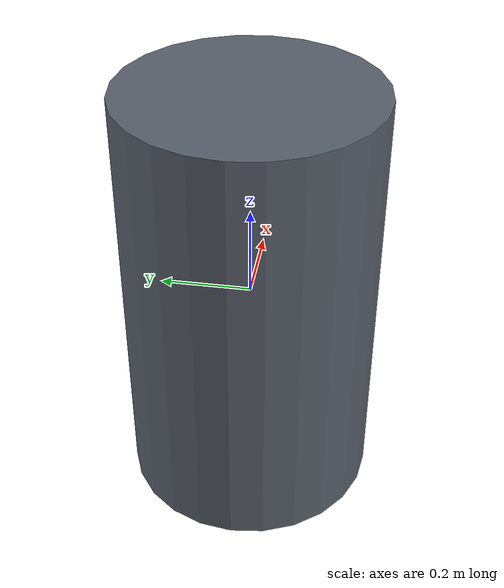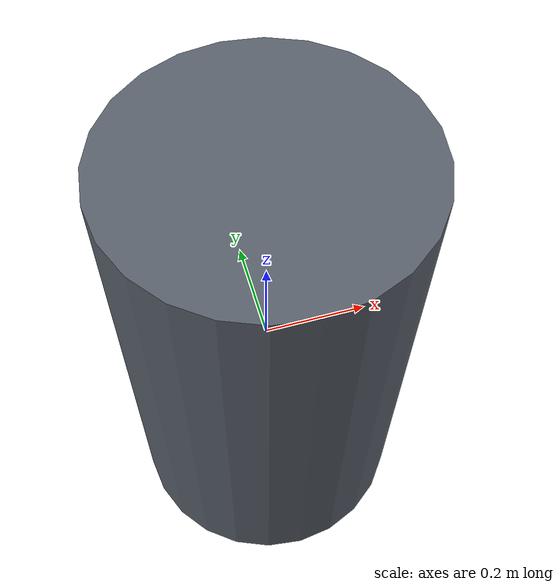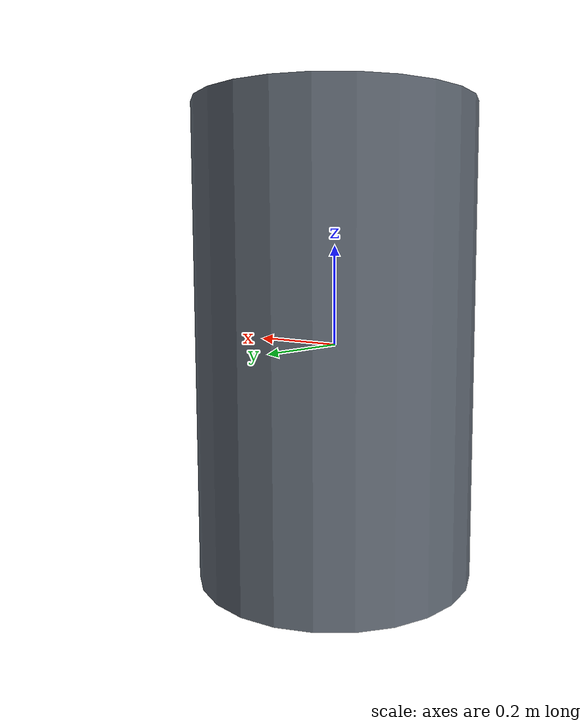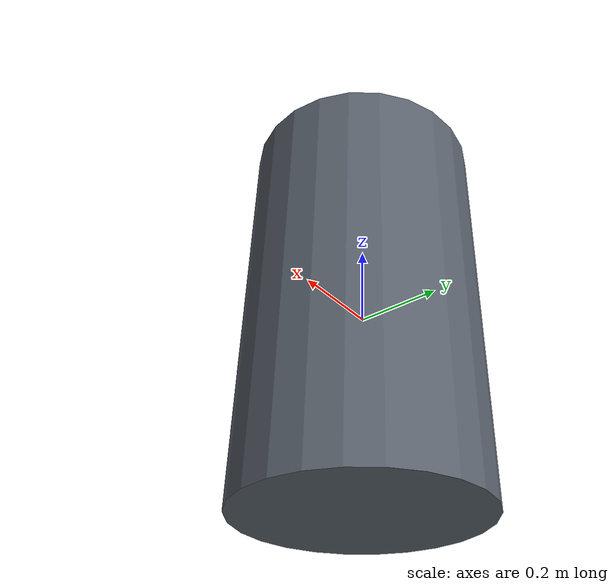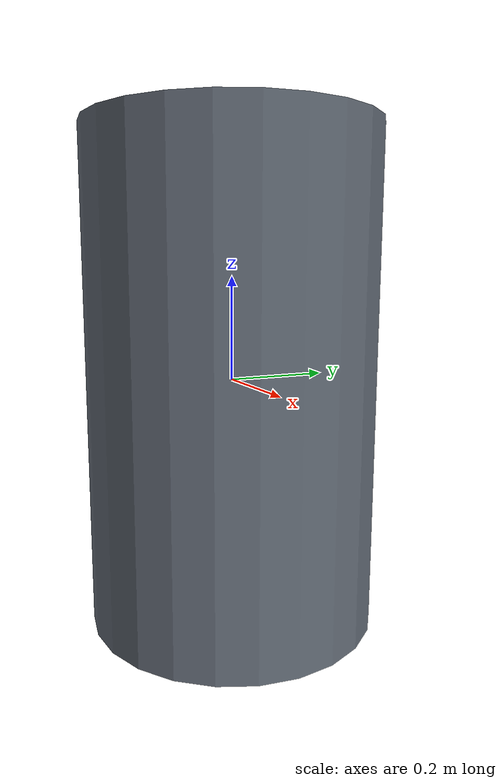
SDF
<?xml version="1.0"?>
<sdf version="1.6">
  <model name="hangout_chair">
    <static>true</static>
    <link name="link">
      <collision name="col">
        <geometry>
          <cylinder>
            <radius>0.28</radius>
            <length>0.95</length>
          </cylinder>
        </geometry>
      </collision>
      <visual name="vis">
        <geometry>
          <cylinder>
            <radius>0.28</radius>
            <length>0.95</length>
          </cylinder>
        </geometry>
        <material>
          <ambient>0.35 0.38 0.42 1</ambient>
          <diffuse>0.35 0.38 0.42 1</diffuse>
        </material>
      </visual>
    </link>
  </model>
</sdf>
